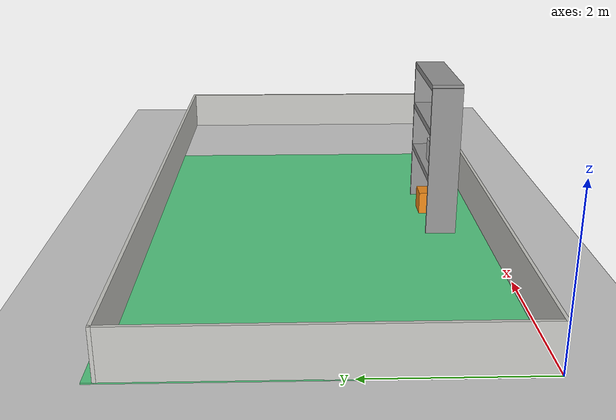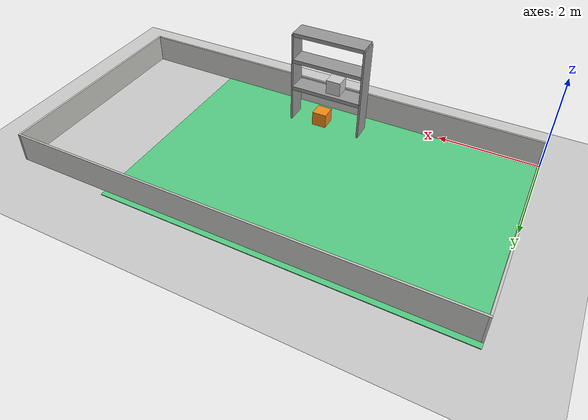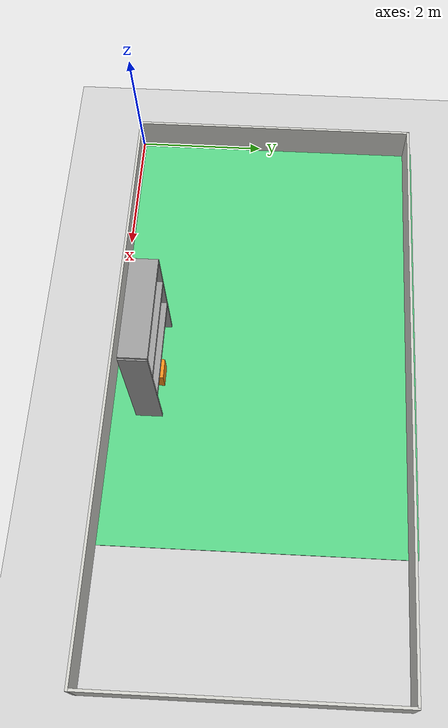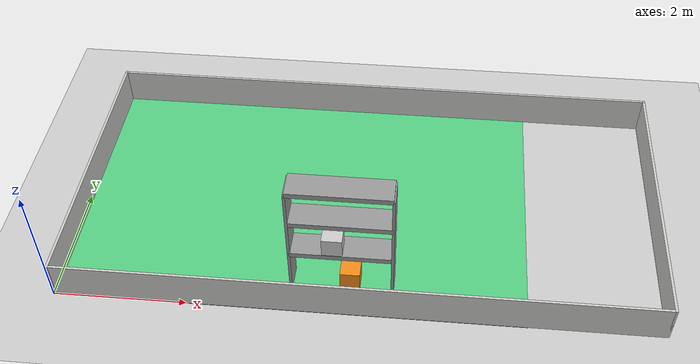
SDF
<sdf version="1.7">
 <world name="default">
  <model name="ground_plane">
   <static>1</static>
   <link name="link">
    <collision name="collision">
     <geometry><plane><normal>0 0 1</normal><size>100 100</size></plane></geometry>
     <surface>
      <contact><collide_bitmask>65535</collide_bitmask></contact>
      <friction><ode><mu>100</mu><mu2>50</mu2></ode></friction>
     </surface>
    </collision>
    <visual name="visual">
     <cast_shadows>0</cast_shadows>
     <geometry><plane><normal>0 0 1</normal><size>100 100</size></plane></geometry>
     <material>
      <script><uri>file://media/materials/scripts/gazebo.material</uri><name>Gazebo/Grey</name></script>
     </material>
    </visual>
   </link>
  </model>
  <model name="border">
   <pose>4.5 2.2438 0 0 -0 0</pose>
   <link name="Wall_21">
    <collision name="Wall_21_Collision">
     <geometry><box><size>9 0.04 0.6</size></box></geometry>
     <pose>0 0 0.3 0 -0 0</pose>
    </collision>
    <visual name="Wall_21_Visual">
     <pose>0 0 0.3 0 -0 0</pose>
     <geometry><box><size>9 0.04 0.6</size></box></geometry>
     <material>
      <script><uri>file://media/materials/scripts/gazebo.material</uri><name>Gazebo/CeilingTiled</name></script>
      <ambient>0.996078 0.47451 0.0196078 1</ambient>
     </material>
     <meta><layer>0</layer></meta>
    </visual>
    <pose>0 2.225 0 0 -0 0</pose>
   </link>
   <link name="Wall_23">
    <collision name="Wall_23_Collision">
     <geometry><box><size>4.49 0.04 0.6</size></box></geometry>
     <pose>0 0 0.3 0 -0 0</pose>
    </collision>
    <visual name="Wall_23_Visual">
     <pose>0 0 0.3 0 -0 0</pose>
     <geometry><box><size>4.49 0.04 0.6</size></box></geometry>
     <material>
      <script><uri>file://media/materials/scripts/gazebo.material</uri><name>Gazebo/CeilingTiled</name></script>
      <ambient>0.996078 0.47451 0.0196078 1</ambient>
     </material>
     <meta><layer>0</layer></meta>
    </visual>
    <pose>-4.48 0 0 0 -0 -1.5708</pose>
   </link>
   <link name="Wall_26">
    <collision name="Wall_26_Collision">
     <geometry><box><size>9 0.04 0.6</size></box></geometry>
     <pose>0 0 0.3 0 -0 0</pose>
    </collision>
    <visual name="Wall_26_Visual">
     <pose>0 0 0.3 0 -0 0</pose>
     <geometry><box><size>9 0.04 0.6</size></box></geometry>
     <material>
      <script><uri>file://media/materials/scripts/gazebo.material</uri><name>Gazebo/CeilingTiled</name></script>
      <ambient>0.996078 0.47451 0.0196078 1</ambient>
     </material>
     <meta><layer>0</layer></meta>
    </visual>
    <pose>0 -2.225 0 0 -0 0</pose>
   </link>
   <link name="Wall_28">
    <collision name="Wall_28_Collision">
     <geometry><box><size>4.49 0.04 0.6</size></box></geometry>
     <pose>0 0 0.3 0 -0 0</pose>
    </collision>
    <visual name="Wall_28_Visual">
     <pose>0 0 0.3 0 -0 0</pose>
     <geometry><box><size>4.49 0.04 0.6</size></box></geometry>
     <material>
      <script><uri>file://media/materials/scripts/gazebo.material</uri><name>Gazebo/CeilingTiled</name></script>
      <ambient>0.996078 0.47451 0.0196078 1</ambient>
     </material>
     <meta><layer>0</layer></meta>
    </visual>
    <pose>4.48 0 0 0 -0 -1.5708</pose>
   </link>
   <static>1</static>
  </model>
  <model name="Shelf_1_clone_0_clone">
   <static>1</static>
   <link name="link_0">
    <inertial>
     <mass>1</mass>
     <inertia>
      <ixx>0.166667</ixx>
      <ixy>0</ixy>
      <ixz>0</ixz>
      <iyy>0.166667</iyy>
      <iyz>0</iyz>
      <izz>0.166667</izz>
     </inertia>
    </inertial>
    <pose>-0.75 0 -0.238 0 -0 0</pose>
    <visual name="visual">
     <geometry><box><size>0.04 0.4 2</size></box></geometry>
     <material>
      <lighting>1</lighting>
      <script><uri>file://media/materials/scripts/gazebo.material</uri><name>Gazebo/Grey</name></script>
      <shader type="pixel"><normal_map>__default__</normal_map></shader>
      <ambient>0.3 0.3 0.3 1</ambient>
      <diffuse>0.7 0.7 0.7 1</diffuse>
      <specular>0.01 0.01 0.01 1</specular>
      <emissive>0 0 0 1</emissive>
     </material>
    </visual>
    <collision name="collision">
     <geometry><box><size>0.04 0.4 2</size></box></geometry>
     <surface>
      <friction>
       <ode><mu>1</mu><mu2>1</mu2><fdir1>0 0 0</fdir1><slip1>0</slip1><slip2>0</slip2></ode>
       <torsional>
        <coefficient>1</coefficient>
        <patch_radius>0</patch_radius>
        <surface_radius>0</surface_radius>
        <use_patch_radius>1</use_patch_radius>
        <ode><slip>0</slip></ode>
       </torsional>
      </friction>
      <bounce><restitution_coefficient>0</restitution_coefficient><threshold>1e+06</threshold></bounce>
      <contact>
       <collide_without_contact>0</collide_without_contact>
       <collide_without_contact_bitmask>1</collide_without_contact_bitmask>
       <collide_bitmask>1</collide_bitmask>
       <ode>
        <soft_cfm>0</soft_cfm>
        <soft_erp>0.2</soft_erp>
        <kp>1e+13</kp>
        <kd>1</kd>
        <max_vel>0.01</max_vel>
        <min_depth>0</min_depth>
       </ode>
       <bullet>
        <split_impulse>1</split_impulse>
        <split_impulse_penetration_threshold>-0.01</split_impulse_penetration_threshold>
        <soft_cfm>0</soft_cfm>
        <soft_erp>0.2</soft_erp>
        <kp>1e+13</kp>
        <kd>1</kd>
       </bullet>
      </contact>
     </surface>
    </collision>
   </link>
   <link name="link_0_clone">
    <inertial>
     <mass>1</mass>
     <inertia>
      <ixx>0.166667</ixx>
      <ixy>0</ixy>
      <ixz>0</ixz>
      <iyy>0.166667</iyy>
      <iyz>0</iyz>
      <izz>0.166667</izz>
     </inertia>
    </inertial>
    <pose>0.75 0 -0.238 0 -0 0</pose>
    <visual name="visual">
     <geometry><box><size>0.04 0.4 2</size></box></geometry>
     <material>
      <lighting>1</lighting>
      <script><uri>file://media/materials/scripts/gazebo.material</uri><name>Gazebo/Grey</name></script>
      <shader type="pixel"><normal_map>__default__</normal_map></shader>
      <ambient>0.3 0.3 0.3 1</ambient>
      <diffuse>0.7 0.7 0.7 1</diffuse>
      <specular>0.01 0.01 0.01 1</specular>
      <emissive>0 0 0 1</emissive>
     </material>
    </visual>
    <collision name="collision">
     <geometry><box><size>0.04 0.4 2</size></box></geometry>
     <surface>
      <friction>
       <ode><mu>1</mu><mu2>1</mu2><fdir1>0 0 0</fdir1><slip1>0</slip1><slip2>0</slip2></ode>
       <torsional>
        <coefficient>1</coefficient>
        <patch_radius>0</patch_radius>
        <surface_radius>0</surface_radius>
        <use_patch_radius>1</use_patch_radius>
        <ode><slip>0</slip></ode>
       </torsional>
      </friction>
      <bounce><restitution_coefficient>0</restitution_coefficient><threshold>1e+06</threshold></bounce>
      <contact>
       <collide_without_contact>0</collide_without_contact>
       <collide_without_contact_bitmask>1</collide_without_contact_bitmask>
       <collide_bitmask>1</collide_bitmask>
       <ode>
        <soft_cfm>0</soft_cfm>
        <soft_erp>0.2</soft_erp>
        <kp>1e+13</kp>
        <kd>1</kd>
        <max_vel>0.01</max_vel>
        <min_depth>0</min_depth>
       </ode>
       <bullet>
        <split_impulse>1</split_impulse>
        <split_impulse_penetration_threshold>-0.01</split_impulse_penetration_threshold>
        <soft_cfm>0</soft_cfm>
        <soft_erp>0.2</soft_erp>
        <kp>1e+13</kp>
        <kd>1</kd>
       </bullet>
      </contact>
     </surface>
    </collision>
   </link>
   <link name="link_1">
    <inertial>
     <mass>1</mass>
     <inertia>
      <ixx>0.166667</ixx>
      <ixy>0</ixy>
      <ixz>0</ixz>
      <iyy>0.166667</iyy>
      <iyz>0</iyz>
      <izz>0.166667</izz>
     </inertia>
    </inertial>
    <pose>0 0 -0.458 0 -0 0</pose>
    <visual name="visual">
     <geometry><box><size>1.5 0.4 0.08</size></box></geometry>
     <material>
      <lighting>1</lighting>
      <script><uri>file://media/materials/scripts/gazebo.material</uri><name>Gazebo/Grey</name></script>
      <shader type="pixel"><normal_map>__default__</normal_map></shader>
      <ambient>0.3 0.3 0.3 1</ambient>
      <diffuse>0.7 0.7 0.7 1</diffuse>
      <specular>0.01 0.01 0.01 1</specular>
      <emissive>0 0 0 1</emissive>
     </material>
    </visual>
    <collision name="collision">
     <geometry><box><size>1.5 0.4 0.08</size></box></geometry>
     <surface>
      <friction>
       <ode><mu>1</mu><mu2>1</mu2><fdir1>0 0 0</fdir1><slip1>0</slip1><slip2>0</slip2></ode>
       <torsional>
        <coefficient>1</coefficient>
        <patch_radius>0</patch_radius>
        <surface_radius>0</surface_radius>
        <use_patch_radius>1</use_patch_radius>
        <ode><slip>0</slip></ode>
       </torsional>
      </friction>
      <bounce><restitution_coefficient>0</restitution_coefficient><threshold>1e+06</threshold></bounce>
      <contact>
       <collide_without_contact>0</collide_without_contact>
       <collide_without_contact_bitmask>1</collide_without_contact_bitmask>
       <collide_bitmask>1</collide_bitmask>
       <ode>
        <soft_cfm>0</soft_cfm>
        <soft_erp>0.2</soft_erp>
        <kp>1e+13</kp>
        <kd>1</kd>
        <max_vel>0.01</max_vel>
        <min_depth>0</min_depth>
       </ode>
       <bullet>
        <split_impulse>1</split_impulse>
        <split_impulse_penetration_threshold>-0.01</split_impulse_penetration_threshold>
        <soft_cfm>0</soft_cfm>
        <soft_erp>0.2</soft_erp>
        <kp>1e+13</kp>
        <kd>1</kd>
       </bullet>
      </contact>
     </surface>
    </collision>
   </link>
   <link name="link_1_clone">
    <inertial>
     <mass>1</mass>
     <inertia>
      <ixx>0.166667</ixx>
      <ixy>0</ixy>
      <ixz>0</ixz>
      <iyy>0.166667</iyy>
      <iyz>0</iyz>
      <izz>0.166667</izz>
     </inertia>
    </inertial>
    <pose>0 0 0.172 0 -0 0</pose>
    <visual name="visual">
     <geometry><box><size>1.5 0.4 0.08</size></box></geometry>
     <material>
      <lighting>1</lighting>
      <script><uri>file://media/materials/scripts/gazebo.material</uri><name>Gazebo/Grey</name></script>
      <shader type="pixel"><normal_map>__default__</normal_map></shader>
      <ambient>0.3 0.3 0.3 1</ambient>
      <diffuse>0.7 0.7 0.7 1</diffuse>
      <specular>0.01 0.01 0.01 1</specular>
      <emissive>0 0 0 1</emissive>
     </material>
    </visual>
    <collision name="collision">
     <geometry><box><size>1.5 0.4 0.08</size></box></geometry>
     <surface>
      <friction>
       <ode><mu>1</mu><mu2>1</mu2><fdir1>0 0 0</fdir1><slip1>0</slip1><slip2>0</slip2></ode>
       <torsional>
        <coefficient>1</coefficient>
        <patch_radius>0</patch_radius>
        <surface_radius>0</surface_radius>
        <use_patch_radius>1</use_patch_radius>
        <ode><slip>0</slip></ode>
       </torsional>
      </friction>
      <bounce><restitution_coefficient>0</restitution_coefficient><threshold>1e+06</threshold></bounce>
      <contact>
       <collide_without_contact>0</collide_without_contact>
       <collide_without_contact_bitmask>1</collide_without_contact_bitmask>
       <collide_bitmask>1</collide_bitmask>
       <ode>
        <soft_cfm>0</soft_cfm>
        <soft_erp>0.2</soft_erp>
        <kp>1e+13</kp>
        <kd>1</kd>
        <max_vel>0.01</max_vel>
        <min_depth>0</min_depth>
       </ode>
       <bullet>
        <split_impulse>1</split_impulse>
        <split_impulse_penetration_threshold>-0.01</split_impulse_penetration_threshold>
        <soft_cfm>0</soft_cfm>
        <soft_erp>0.2</soft_erp>
        <kp>1e+13</kp>
        <kd>1</kd>
       </bullet>
      </contact>
     </surface>
    </collision>
   </link>
   <link name="link_1_clone_clone">
    <inertial>
     <mass>1</mass>
     <inertia>
      <ixx>0.166667</ixx>
      <ixy>0</ixy>
      <ixz>0</ixz>
      <iyy>0.166667</iyy>
      <iyz>0</iyz>
      <izz>0.166667</izz>
     </inertia>
    </inertial>
    <pose>0 0 0.762 0 -0 0</pose>
    <visual name="visual">
     <geometry><box><size>1.5 0.4 0.08</size></box></geometry>
     <material>
      <lighting>1</lighting>
      <script><uri>file://media/materials/scripts/gazebo.material</uri><name>Gazebo/Grey</name></script>
      <shader type="pixel"><normal_map>__default__</normal_map></shader>
      <ambient>0.3 0.3 0.3 1</ambient>
      <diffuse>0.7 0.7 0.7 1</diffuse>
      <specular>0.01 0.01 0.01 1</specular>
      <emissive>0 0 0 1</emissive>
     </material>
    </visual>
    <collision name="collision">
     <geometry><box><size>1.5 0.4 0.08</size></box></geometry>
     <surface>
      <friction>
       <ode><mu>1</mu><mu2>1</mu2><fdir1>0 0 0</fdir1><slip1>0</slip1><slip2>0</slip2></ode>
       <torsional>
        <coefficient>1</coefficient>
        <patch_radius>0</patch_radius>
        <surface_radius>0</surface_radius>
        <use_patch_radius>1</use_patch_radius>
        <ode><slip>0</slip></ode>
       </torsional>
      </friction>
      <bounce><restitution_coefficient>0</restitution_coefficient><threshold>1e+06</threshold></bounce>
      <contact>
       <collide_without_contact>0</collide_without_contact>
       <collide_without_contact_bitmask>1</collide_without_contact_bitmask>
       <collide_bitmask>1</collide_bitmask>
       <ode>
        <soft_cfm>0</soft_cfm>
        <soft_erp>0.2</soft_erp>
        <kp>1e+13</kp>
        <kd>1</kd>
        <max_vel>0.01</max_vel>
        <min_depth>0</min_depth>
       </ode>
       <bullet>
        <split_impulse>1</split_impulse>
        <split_impulse_penetration_threshold>-0.01</split_impulse_penetration_threshold>
        <soft_cfm>0</soft_cfm>
        <soft_erp>0.2</soft_erp>
        <kp>1e+13</kp>
        <kd>1</kd>
       </bullet>
      </contact>
     </surface>
    </collision>
   </link>
   <static>0</static>
   <pose>4.25 0.6 1.23 0 -0 0</pose>
  </model>
  <model name="ground_green">
   <link name="link">
    <inertial>
     <mass>1</mass>
     <inertia>
      <ixx>0.166667</ixx>
      <ixy>0</ixy>
      <ixz>0</ixz>
      <iyy>0.166667</iyy>
      <iyz>0</iyz>
      <izz>0.166667</izz>
     </inertia>
    </inertial>
    <visual name="visual">
     <geometry><box><size>7 4.6 0.02</size></box></geometry>
     <material>
      <ambient>0.337 0.811 0.517 1</ambient>
      <diffuse>0.337 0.811 0.517 1</diffuse>
      <specular>0.2 0.2 0.2 1</specular>
      <emissive>0 0 0 1</emissive>
      <shininess>0.1</shininess>
     </material>
    </visual>
    <collision name="collision">
     <geometry><box><size>7 4.6 0.02</size></box></geometry>
     <surface>
      <friction>
       <ode><mu>1</mu><mu2>1</mu2><fdir1>0 0 0</fdir1><slip1>0</slip1><slip2>0</slip2></ode>
       <torsional>
        <coefficient>1</coefficient>
        <patch_radius>0</patch_radius>
        <surface_radius>0</surface_radius>
        <use_patch_radius>1</use_patch_radius>
        <ode><slip>0</slip></ode>
       </torsional>
      </friction>
      <bounce><restitution_coefficient>0</restitution_coefficient><threshold>1e+06</threshold></bounce>
      <contact>
       <collide_without_contact>0</collide_without_contact>
       <collide_without_contact_bitmask>1</collide_without_contact_bitmask>
       <collide_bitmask>1</collide_bitmask>
       <ode>
        <soft_cfm>0</soft_cfm>
        <soft_erp>0.2</soft_erp>
        <kp>1e+13</kp>
        <kd>1</kd>
        <max_vel>0.01</max_vel>
        <min_depth>0</min_depth>
       </ode>
       <bullet>
        <split_impulse>1</split_impulse>
        <split_impulse_penetration_threshold>-0.01</split_impulse_penetration_threshold>
        <soft_cfm>0</soft_cfm>
        <soft_erp>0.2</soft_erp>
        <kp>1e+13</kp>
        <kd>1</kd>
       </bullet>
      </contact>
     </surface>
    </collision>
   </link>
   <static>1</static>
   <pose>3.5 2.3 -0.005 0 -0 0</pose>
  </model>
  <model name="box_2_6">
   <link name="link">
    <inertial>
     <mass>1</mass>
     <inertia>
      <ixx>0.166667</ixx>
      <ixy>0</ixy>
      <ixz>0</ixz>
      <iyy>0.166667</iyy>
      <iyz>0</iyz>
      <izz>0.166667</izz>
     </inertia>
    </inertial>
    <visual name="visual">
     <geometry><box><size>0.3 0.3 0.3</size></box></geometry>
     <material>
      <script>
       <uri>file://materials_user/scripts</uri>
       <uri>file://materials_user/textures</uri>
       <name>YMC/BoxBanana</name>
      </script>
      <shader type="pixel"><normal_map>__default__</normal_map></shader>
      <ambient>0.8 0.8 0.8 1</ambient>
      <diffuse>0.8 0.8 0.8 1</diffuse>
      <specular>0.5 0.5 0.5 1</specular>
      <emissive>0.5 0.5 0.5 1</emissive>
     </material>
    </visual>
    <collision name="collision">
     <geometry><box><size>0.3 0.3 0.3</size></box></geometry>
     <surface>
      <friction>
       <ode><mu>1</mu><mu2>1</mu2><fdir1>0 0 0</fdir1><slip1>0</slip1><slip2>0</slip2></ode>
       <torsional>
        <coefficient>1</coefficient>
        <patch_radius>0</patch_radius>
        <surface_radius>0</surface_radius>
        <use_patch_radius>1</use_patch_radius>
        <ode><slip>0</slip></ode>
       </torsional>
      </friction>
      <bounce><restitution_coefficient>0</restitution_coefficient><threshold>1e+06</threshold></bounce>
      <contact>
       <collide_without_contact>0</collide_without_contact>
       <collide_without_contact_bitmask>1</collide_without_contact_bitmask>
       <collide_bitmask>1</collide_bitmask>
       <ode>
        <soft_cfm>0</soft_cfm>
        <soft_erp>0.2</soft_erp>
        <kp>1e+13</kp>
        <kd>1</kd>
        <max_vel>0.01</max_vel>
        <min_depth>0</min_depth>
       </ode>
       <bullet>
        <split_impulse>1</split_impulse>
        <split_impulse_penetration_threshold>-0.01</split_impulse_penetration_threshold>
        <soft_cfm>0</soft_cfm>
        <soft_erp>0.2</soft_erp>
        <kp>1e+13</kp>
        <kd>1</kd>
       </bullet>
      </contact>
     </surface>
    </collision>
   </link>
   <static>0</static>
   <pose>4.12601 0.557371 0.961998 4e-06 4e-06 9e-06</pose>
  </model>
  <model name="box_2_10">
   <link name="link">
    <inertial>
     <mass>1</mass>
     <inertia>
      <ixx>0.166667</ixx>
      <ixy>0</ixy>
      <ixz>0</ixz>
      <iyy>0.166667</iyy>
      <iyz>0</iyz>
      <izz>0.166667</izz>
     </inertia>
    </inertial>
    <visual name="visual">
     <geometry><box><size>0.3 0.3 0.3</size></box></geometry>
     <material>
      <script>
       <uri>file://materials_user/scripts</uri>
       <uri>file://materials_user/textures</uri>
       <name>YMC/BoxOrange</name>
      </script>
      <shader type="pixel"><normal_map>__default__</normal_map></shader>
      <ambient>0.8 0.8 0.8 1</ambient>
      <diffuse>0.8 0.8 0.8 1</diffuse>
      <specular>0.5 0.5 0.5 1</specular>
      <emissive>0.5 0.5 0.5 1</emissive>
     </material>
    </visual>
    <collision name="collision">
     <geometry><box><size>0.3 0.3 0.3</size></box></geometry>
     <surface>
      <friction>
       <ode><mu>1</mu><mu2>1</mu2><fdir1>0 0 0</fdir1><slip1>0</slip1><slip2>0</slip2></ode>
       <torsional>
        <coefficient>1</coefficient>
        <patch_radius>0</patch_radius>
        <surface_radius>0</surface_radius>
        <use_patch_radius>1</use_patch_radius>
        <ode><slip>0</slip></ode>
       </torsional>
      </friction>
      <bounce><restitution_coefficient>0</restitution_coefficient><threshold>1e+06</threshold></bounce>
      <contact>
       <collide_without_contact>0</collide_without_contact>
       <collide_without_contact_bitmask>1</collide_without_contact_bitmask>
       <collide_bitmask>1</collide_bitmask>
       <ode>
        <soft_cfm>0</soft_cfm>
        <soft_erp>0.2</soft_erp>
        <kp>1e+13</kp>
        <kd>1</kd>
        <max_vel>0.01</max_vel>
        <min_depth>0</min_depth>
       </ode>
       <bullet>
        <split_impulse>1</split_impulse>
        <split_impulse_penetration_threshold>-0.01</split_impulse_penetration_threshold>
        <soft_cfm>0</soft_cfm>
        <soft_erp>0.2</soft_erp>
        <kp>1e+13</kp>
        <kd>1</kd>
       </bullet>
      </contact>
     </surface>
    </collision>
   </link>
   <static>0</static>
   <pose>4.36672 0.637281 0.154995 -5e-06 -4e-06 -6e-06</pose>
  </model>
 </world>
</sdf>
